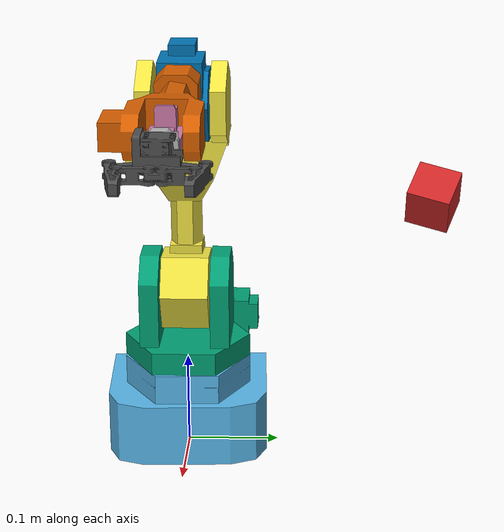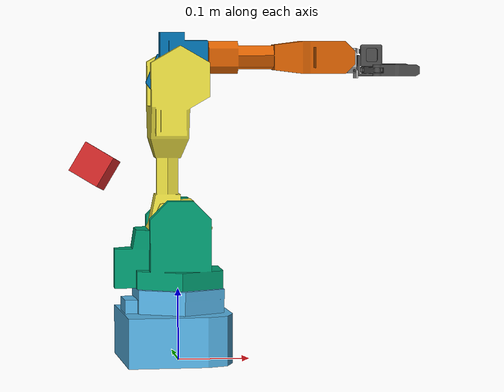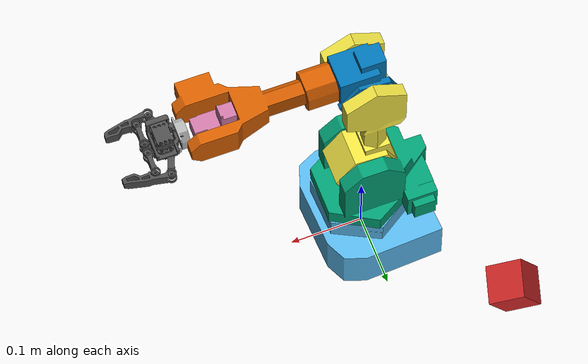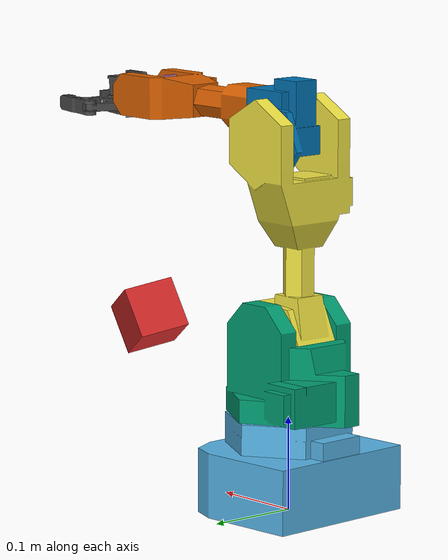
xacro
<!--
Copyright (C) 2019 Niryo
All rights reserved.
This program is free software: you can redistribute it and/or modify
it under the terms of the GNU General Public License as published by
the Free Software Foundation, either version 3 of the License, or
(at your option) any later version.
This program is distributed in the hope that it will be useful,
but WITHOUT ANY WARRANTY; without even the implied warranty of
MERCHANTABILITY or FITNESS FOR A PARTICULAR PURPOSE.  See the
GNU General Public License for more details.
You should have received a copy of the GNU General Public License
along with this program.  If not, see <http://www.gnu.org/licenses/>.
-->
<?xml version="1.0"?>

<robot xmlns:xacro="http://www.ros.org/wiki/xacro" name="niryo_one">
    <!-- Arguments -->
    <xacro:arg name="standalone" default="true" />
    <xacro:arg name="parent_link" default="world" />
    <xacro:arg name="pose_x" default="0.0" />
    <xacro:arg name="pose_y" default="0.0" />
    <xacro:arg name="pose_z" default="0.0" />
    <xacro:arg name="rotation_z" default="0.0" />

    <!-- Properties -->
    <xacro:property name="com_mainsupport_x" value="-0.00216" />
    <xacro:property name="com_mainsupport_z" value="0.02135" />
    <xacro:property name="com_mainsupport_y" value="-0.00204" />
    <xacro:property name="com_left_gear_x" value="0.00326" />
    <xacro:property name="com_left_gear_y" value="0.00988" />
    <xacro:property name="com_left_gear_z" value="0.00032" />
    <xacro:property name="com_right_gear_x" value="0.00374" />
    <xacro:property name="com_right_gear_y" value="0.01129" />
    <xacro:property name="com_rod_y" value="0.0147" />
    <xacro:property name="com_clamp_x" value="0.00896" />
    <xacro:property name="com_clamp_y" value="0.03059" />
    <xacro:property name="com_motor_x" value="-0.00684" />
    <xacro:property name="com_motor_z" value="0.0115" />

    <xacro:property name="distance_origin_shoulder_z" value="0.103" />
    <xacro:property name="distance_shoulder_arm_z" value="0.080" />
    <xacro:property name="distance_arm_elbow_x" value="0.210" />
    <xacro:property name="distance_elbow_forearm_x" value="0.0415" />
    <xacro:property name="distance_elbow_forearm_y" value="0.030" />
    <xacro:property name="distance_forearm_wrist_z" value="0.180" />
    <xacro:property name="distance_wrist_hand_x" value="0.0164" />
    <xacro:property name="distance_wrist_hand_y" value="-0.0055" />
    <xacro:property name="distance_hand_tool" value="0.0073" />
    <xacro:property name="distance_mainsupport_left_gear_x" value="-0.010" />
    <xacro:property name="distance_mainsupport_left_gear_z" value="0.0246" />
    <xacro:property name="distance_mainsupport_left_gear_y" value="-0.01225" />
    <xacro:property name="distance_mainsupport_right_gear_x" value="0.010" />
    <xacro:property name="distance_mainsupport_right_gear_z" value="0.0246" />
    <xacro:property name="distance_mainsupport_right_gear_y" value="-0.01225" />
    <xacro:property name="distance_mainsupport_rod_x" value="-0.0065" />
    <xacro:property name="distance_mainsupport_rod_z" value="0.0466" />
    <xacro:property name="distance_mainsupport_rod_y" value="-0.01225" />
    <xacro:property name="distance_mainsupport_motor_x" value="-0.010" />
    <xacro:property name="distance_mainsupport_motor_z" value="0.0246" />
    <xacro:property name="distance_mainsupport_motor_y" value="-0.00425" />
    <xacro:property name="distance_gear_clamp_x" value="0.00658" />
    <xacro:property name="distance_gear_clamp_y" value="0.03438" />
    <xacro:property name="distance_rod_clamp_y" value="0.02940" />

    <xacro:property name="PI" value="3.14159265359" />

    <xacro:property name="limit_low_shoulder_rotation" value="-3.05433" />
    <xacro:property name="limit_up_shoulder_rotation" value="3.05433" />
    <xacro:property name="limit_low_arm_rotation" value="-1.91986" />
    <xacro:property name="limit_up_arm_rotation" value="0.640187" />
    <xacro:property name="limit_low_elbow_rotation" value="-1.397485" />
    <xacro:property name="limit_up_elbow_rotation" value="${PI/2}" />
    <xacro:property name="limit_low_forearm_rotation" value="-3.05433" />
    <xacro:property name="limit_up_forearm_rotation" value="3.05433" />
    <xacro:property name="limit_low_wrist_rotation" value="-1.74533" />
    <xacro:property name="limit_up_wrist_rotation" value="1.91986" />
    <xacro:property name="limit_low_hand_rotation" value="-2.57436" />
    <xacro:property name="limit_up_hand_rotation" value="2.57436" />
    <xacro:property name="limit_low_hand_rotation" value="-2.57436" />
    <xacro:property name="limit_up_hand_rotation" value="2.57436" />
    <xacro:property name="limit_low_gear_rotation" value="0" />
    <xacro:property name="limit_up_gear_rotation" value="1.2" />
    <xacro:property name="limit_low_rod_rotation" value="${-PI}" />
    <xacro:property name="limit_up_rod_rotation" value="${PI}" />
    <xacro:property name="limit_low_clamp_rotation" value="${-PI}" />
    <xacro:property name="limit_up_clamp_rotation" value="${PI}" />

    <!-- Includes -->
    <xacro:include filename="$(find niryo_one_description)/urdf/niryo_one_gazebo.urdf.xacro" />
    <xacro:include filename="$(find niryo_one_description)/urdf/niryo_one_transmission.urdf.xacro" />

    <!-- Links -->
    <xacro:if value="$(arg standalone)">
        <link name="world" />
    </xacro:if>

    <link name="base_link">
        <visual>
            <origin xyz="0 0 0" rpy="0 0 0" />
            <geometry>
                <mesh filename="package://niryo_one_description/meshes/collada/base_link.dae" />
            </geometry>
        </visual>
        <collision>
            <origin xyz="0 0 0" rpy="0 0 0" />
            <geometry>
                <mesh filename="package://niryo_one_description/meshes/stl/base_link.stl" />
            </geometry>
        </collision>
        <inertial>
            <origin xyz="0 0 ${distance_origin_shoulder_z / 2}" rpy="0 0 0" />
            <mass value="1.2" />
            <inertia ixx="0.0015" ixy="0.0" ixz="0.0" iyy="0.0015" iyz="0.0" izz="0.0015" />
        </inertial>
    </link>

    <link name="shoulder_link">
        <visual>
            <origin xyz="0 0 0" rpy="0 0 0" />
            <geometry>
                <mesh filename="package://niryo_one_description/meshes/collada/shoulder_link.dae" />
            </geometry>
        </visual>
        <collision>
            <origin xyz="0 0 0" rpy="0 0 0" />
            <geometry>
                <mesh filename="package://niryo_one_description/meshes/stl/shoulder_link.stl" />
            </geometry>
        </collision>
        <inertial>
            <origin xyz="0 0 ${distance_shoulder_arm_z / 2}" rpy="0 0 0" />
            <mass value="0.8" />
            <inertia ixx="0.0015" ixy="0.0" ixz="0.0" iyy="0.0015" iyz="0.0" izz="0.0015" />
        </inertial>
    </link>

    <link name="arm_link">
        <visual>
            <origin xyz="0 0 0" rpy="0 0 0" />
            <geometry>
                <mesh filename="package://niryo_one_description/meshes/collada/arm_link.dae" />
            </geometry>
        </visual>
        <collision>
            <origin xyz="0 0 0" rpy="0 0 0" />
            <geometry>
                <mesh filename="package://niryo_one_description/meshes/stl/arm_link.stl" />
            </geometry>
        </collision>
        <inertial>
            <origin xyz="${distance_arm_elbow_x / 2} 0.006 0.003" rpy="0 0 0" />
            <mass value="0.4" />
            <inertia ixx="0.0015" ixy="0.0" ixz="0.0" iyy="0.0015" iyz="0.0" izz="0.0015" />
        </inertial>
    </link>

    <link name="elbow_link">
        <visual>
            <origin xyz="0 0 0" rpy="0 0 0" />
            <geometry>
                <mesh filename="package://niryo_one_description/meshes/collada/elbow_link.dae" />
            </geometry>
        </visual>
        <collision>
            <origin xyz="0 0 0" rpy="0 0 0" />
            <geometry>
                <mesh filename="package://niryo_one_description/meshes/stl/elbow_link.stl" />
            </geometry>
        </collision>
        <inertial>
            <origin xyz="${distance_elbow_forearm_x / 2} ${distance_elbow_forearm_y / 2} 0" rpy="0 0 0" />
            <mass value="0.3" />
            <inertia ixx="0.0015" ixy="0.0" ixz="0.0" iyy="0.0015" iyz="0.0" izz="0.0015" />
        </inertial>
    </link>

    <link name="forearm_link">
        <visual>
            <origin xyz="0 0 0" rpy="0 0 0" />
            <geometry>
                <mesh filename="package://niryo_one_description/meshes/collada/forearm_link.dae" />
            </geometry>
        </visual>
        <collision>
            <origin xyz="0 0 0" rpy="0 0 0" />
            <geometry>
                <mesh filename="package://niryo_one_description/meshes/stl/forearm_link.stl" />
            </geometry>
        </collision>
        <inertial>
            <origin xyz="0 0 ${distance_forearm_wrist_z / 2}" rpy="0 0 0" />
            <mass value="0.3" />
            <inertia ixx="0.0015" ixy="0.0" ixz="0.0" iyy="0.0015" iyz="0.0" izz="0.0015" />
        </inertial>
    </link>

    <link name="wrist_link">
        <visual>
            <origin xyz="0 0 0" rpy="0 0 0" />
            <geometry>
                <mesh filename="package://niryo_one_description/meshes/collada/wrist_link.dae" />
            </geometry>
        </visual>
        <collision>
            <origin xyz="0 0 0" rpy="0 0 0" />
            <geometry>
                <mesh filename="package://niryo_one_description/meshes/stl/wrist_link.stl" />
            </geometry>
        </collision>
        <inertial>
            <origin xyz="${distance_wrist_hand_x / 2} ${distance_wrist_hand_y / 2} 0" rpy="0 0 0" />
            <mass value="0.15" />
            <inertia ixx="0.001" ixy="0.0" ixz="0.0" iyy="0.001" iyz="0.0" izz="0.001" />
        </inertial>
    </link>

    <link name="hand_link">
        <visual>
            <origin xyz="0 0 0" rpy="0 0 0" />
            <geometry>
                <mesh filename="package://niryo_one_description/meshes/collada/hand_link.dae" />
            </geometry>
        </visual>
        <collision>
            <origin xyz="0 0 0" rpy="0 0 0" />
            <geometry>
                <mesh filename="package://niryo_one_description/meshes/stl/hand_link.stl" />
            </geometry>
        </collision>
        <inertial>
            <origin xyz="0 0 ${distance_hand_tool / 2}" rpy="0 0 0" />
            <mass value="0.05" />
            <inertia ixx="0.001" ixy="0.0" ixz="0.0" iyy="0.001" iyz="0.0" izz="0.001" />
        </inertial>
    </link>

    <link name="mainsupport">
        <visual>
            <origin xyz="0 0 0" rpy="0 0 0" />
            <geometry>
                <mesh filename="package://niryo_one_description/meshes/stl/G2_MainSupport.STL" scale="0.001 0.001 0.001" />
            </geometry>
        </visual>
        <collision>
            <origin xyz="0 0 0" rpy="0 0 0" />
            <geometry>
                <mesh filename="package://niryo_one_description/meshes/stl/G2_MainSupport.STL" scale="0.001 0.001 0.001" />
            </geometry>
        </collision>
        <inertial>
            <origin xyz="${com_mainsupport_x} ${com_mainsupport_y} ${com_mainsupport_z}" rpy="0 0 0" />
            <mass value="0.01306" />
            <inertia ixx="4.94888021667e-03" ixy="0.0" ixz="0.0" iyy="4.27188246667e-03" iyz="0.0" izz="5.00673601667e-03" />
        </inertial>
    </link>

    <link name="motor">
        <visual>
            <origin xyz="0 0 0" rpy="0 0 0" />
            <geometry>
                <mesh filename="package://niryo_one_description/meshes/stl/G2_Motor.STL" scale="0.001 0.001 0.001" />
            </geometry>
        </visual>
        <collision>
            <origin xyz="0 0 0" rpy="0 0 0" />
            <geometry>
                <mesh filename="package://niryo_one_description/meshes/stl/G2_Motor.STL" scale="0.001 0.001 0.001" />
            </geometry>
        </collision>
        <inertial>
            <origin xyz="${com_motor_x} 0 ${com_motor_z}" rpy="0 0 0" />
            <mass value="0.01658" />
            <inertia ixx="1.803075e-03" ixy="0.0" ixz="0.0" iyy="2.797875e-03" iyz="0.0" izz="2.58648e-03" />
        </inertial>
    </link>

    <link name="left_gear">
        <visual>
            <origin xyz="0 0 0" rpy="0 0 0" />
            <geometry>
                <mesh filename="package://niryo_one_description/meshes/stl/G2_GearLeft.STL" scale="0.001 0.001 0.001" />
            </geometry>
        </visual>
        <collision>
            <origin xyz="0 0 0" rpy="0 0 0" />
            <geometry>
                <mesh filename="package://niryo_one_description/meshes/stl/G2_GearLeft.STL" scale="0.001 0.001 0.001" />
            </geometry>
        </collision>
        <inertial>
            <origin xyz="${com_left_gear_x} ${com_left_gear_y} ${com_left_gear_z}" rpy="0 0 0" />
            <mass value="0.0043" />
            <inertia ixx="9.39126584733e-04" ixy="0.0" ixz="0.0" iyy="2.218355466e-04" iyz="0.0" izz="1.06535700633e-03" />
        </inertial>
    </link>

    <link name="right_gear">
        <visual>
            <origin xyz="0 0 0" rpy="0 0 0" />
            <geometry>
                <mesh filename="package://niryo_one_description/meshes/stl/G2_GearRight.STL" scale="0.001 0.001 0.001" />
            </geometry>
        </visual>
        <collision>
            <origin xyz="0 0 0" rpy="0 0 0" />
            <geometry>
                <mesh filename="package://niryo_one_description/meshes/stl/G2_GearRight.STL" scale="0.001 0.001 0.001" />
            </geometry>
        </collision>
        <inertial>
            <origin xyz="${com_right_gear_x} ${com_right_gear_y} 0" rpy="0 0 0" />
            <mass value="0.00375" />
            <inertia ixx="7.95137005e-04" ixy="0.0" ixz="0.0" iyy="1.7221403125e-04" iyz="0.0" izz="9.2735103625e-04" />
        </inertial>
    </link>

    <link name="left_rod">
        <visual>
            <origin xyz="0 0 0" rpy="0 0 0" />
            <geometry>
                <mesh filename="package://niryo_one_description/meshes/stl/G2_Rod.STL" scale="0.001 0.001 0.001" />
            </geometry>
        </visual>
        <collision>
            <origin xyz="0 0 0" rpy="0 0 0" />
            <geometry>
                <mesh filename="package://niryo_one_description/meshes/stl/G2_Rod.STL" scale="0.001 0.001 0.001" />
            </geometry>
        </collision>
        <inertial>
            <origin xyz="0 ${com_rod_y} 0" rpy="0 0 0" />
            <mass value="0.00214" />
            <inertia ixx="243.37e-6" ixy="-0.01e-6" ixz="0.0" iyy="76.17e-6" iyz="0.0" izz="198.23e-6" />
        </inertial>
    </link>

    <link name="right_rod">
        <visual>
            <origin xyz="0 0 0" rpy="0 0 0" />
            <geometry>
                <mesh filename="package://niryo_one_description/meshes/stl/G2_Rod.STL" scale="0.001 0.001 0.001" />
            </geometry>
        </visual>
        <collision>
            <origin xyz="0 0 0" rpy="0 0 0" />
            <geometry>
                <mesh filename="package://niryo_one_description/meshes/stl/G2_Rod.STL" scale="0.001 0.001 0.001" />
            </geometry>
        </collision>
        <inertial>
            <origin xyz="0 ${com_rod_y} 0" rpy="0 0 0" />
            <mass value="0.00214" />
            <inertia ixx="243.37e-6" ixy="-0.01e-6" ixz="0.0" iyy="76.17e-6" iyz="0.0" izz="198.23e-6" />
        </inertial>
    </link>

    <link name="left_clamp">
        <visual>
            <origin xyz="0 0 0" rpy="0 0 0" />
            <geometry>
                <mesh filename="package://niryo_one_description/meshes/stl/G2_Clamp.STL" scale="0.001 0.001 0.001" />
            </geometry>
        </visual>
        <collision>
            <origin xyz="0 0 0" rpy="0 0 0" />
            <geometry>
                <mesh filename="package://niryo_one_description/meshes/stl/G2_Clamp.STL" scale="0.001 0.001 0.001" />
            </geometry>
        </collision>
        <inertial>
            <origin xyz="${com_clamp_x} ${com_clamp_y} 0" rpy="0 0 0" />
            <mass value="0.00662" />
            <inertia ixx="1953.77e-6" ixy="447.97e-6" ixz="0.0" iyy="339.54e-6" iyz="0.0" izz="2024.22e-6" />
        </inertial>
    </link>

    <link name="right_clamp">
        <visual>
            <origin xyz="0 0 0" rpy="0 0 0" />
            <geometry>
                <mesh filename="package://niryo_one_description/meshes/stl/G2_Clamp.STL" scale="0.001 0.001 0.001" />
            </geometry>
        </visual>
        <collision>
            <origin xyz="0 0 0" rpy="0 0 0" />
            <geometry>
                <mesh filename="package://niryo_one_description/meshes/stl/G2_Clamp.STL" scale="0.001 0.001 0.001" />
            </geometry>
        </collision>
        <inertial>
            <origin xyz="${com_clamp_x} ${com_clamp_y} 0" rpy="0 0 0" />
            <mass value="0.00662" />
            <inertia ixx="1953.77e-6" ixy="447.97e-6" ixz="0.0" iyy="339.54e-6" iyz="0.0" izz="2024.22e-6" />
        </inertial>
    </link>

    <link name="tool_link"></link>

    <!--Joints -->
    <joint name="joint_base" type="fixed">
        <parent link="$(arg parent_link)" />
        <child link="base_link" />
        <origin xyz="$(arg pose_x) $(arg pose_y) $(arg pose_z)" rpy="0 0 $(arg rotation_z)" />
    </joint>

    <joint name="joint_1" type="revolute">
        <parent link="base_link" />
        <child link="shoulder_link" />
        <origin xyz="0 0 ${distance_origin_shoulder_z}" rpy="0 0 0" />
        <axis xyz="0 0 1" />
        <limit effort="100.0" velocity="3.0" lower="${limit_low_shoulder_rotation}" upper="${limit_up_shoulder_rotation}" />
        <dynamics damping="0.1" friction="0.0" />
    </joint>

    <joint name="joint_2" type="revolute">
        <parent link="shoulder_link" />
        <child link="arm_link" />
        <origin xyz="0 0 ${distance_shoulder_arm_z}" rpy="${PI/2} ${-PI/2} 0" />
        <limit effort="100.0" velocity="3.0" lower="${limit_low_arm_rotation}" upper="${limit_up_arm_rotation}" />
        <axis xyz="0 0 1" />
        <dynamics damping="0.1" friction="0.0" />
    </joint>

    <joint name="joint_3" type="revolute">
        <parent link="arm_link" />
        <child link="elbow_link" />
        <origin xyz="${distance_arm_elbow_x} 0 0" rpy="0 0 ${-PI/2}" />
        <limit effort="100.0" velocity="3.0" lower="${limit_low_elbow_rotation}" upper="${limit_up_elbow_rotation}" />
        <axis xyz="0 0 1" />
        <dynamics damping="0.1" friction="0.0" />
    </joint>

    <joint name="joint_4" type="revolute">
        <parent link="elbow_link" />
        <child link="forearm_link" />
        <origin xyz="${distance_elbow_forearm_x} ${distance_elbow_forearm_y} 0" rpy="0 ${PI/2} 0" />
        <limit effort="100.0" velocity="3.0" lower="${limit_low_forearm_rotation}" upper="${limit_up_forearm_rotation}" />
        <axis xyz="0 0 1" />
        <dynamics damping="0.1" friction="0.0" />
    </joint>

    <joint name="joint_5" type="revolute">
        <parent link="forearm_link" />
        <child link="wrist_link" />
        <origin xyz="0 0 ${distance_forearm_wrist_z}" rpy="0 ${-PI/2} 0" />
        <limit effort="100.0" velocity="3.0" lower="${limit_low_wrist_rotation}" upper="${limit_up_wrist_rotation}" />
        <axis xyz="0 0 1" />
        <dynamics damping="0.1" friction="0.0" />
    </joint>

    <joint name="joint_6" type="revolute">
        <parent link="wrist_link" />
        <child link="hand_link" />
        <origin xyz="${distance_wrist_hand_x} ${distance_wrist_hand_y} 0" rpy="0 ${PI/2} 0" />
        <limit effort="100.0" velocity="3.0" lower="${limit_low_hand_rotation}" upper="${limit_up_hand_rotation}" />
        <axis xyz="0 0 1" />
        <dynamics damping="0.1" friction="0.0" />
    </joint>

    <joint name="tool_joint" type="fixed">
        <parent link="hand_link" />
        <child link="tool_link" />
        <origin xyz="0 0 ${distance_hand_tool}" rpy="0 0 0" />
    </joint>

    <joint name="mainsupport_joint" type="fixed">
        <parent link="tool_link" />
        <child link="mainsupport" />
        <origin xyz="0 0 0" rpy="0 0 0" />
    </joint>

    <joint name="motor_joint" type="fixed">
        <parent link="mainsupport" />
        <child link="motor" />
        <origin xyz="${distance_mainsupport_motor_x} ${distance_mainsupport_motor_y} ${distance_mainsupport_motor_z}" rpy="${-PI/2} ${PI} 0" />
    </joint>

    <joint name="gripper_joint" type="revolute">
        <parent link="mainsupport" />
        <child link="left_gear" />
        <origin xyz="${distance_mainsupport_left_gear_x} ${distance_mainsupport_left_gear_y} ${distance_mainsupport_left_gear_z}" rpy="${-PI/2} ${PI/180*(180-72.65)} 0" />
        <axis xyz="0 0 1" />
        <limit effort="100.0" velocity="3.0" lower="${limit_low_gear_rotation}" upper="${limit_up_gear_rotation}" />
        <dynamics damping="0.1" friction="0.0" />
    </joint>

    <joint name="right_gear_joint" type="revolute">
        <parent link="mainsupport" />
        <child link="right_gear" />
        <origin xyz="${distance_mainsupport_right_gear_x} ${distance_mainsupport_right_gear_y} ${distance_mainsupport_right_gear_z}" rpy="${PI/2} ${PI/180*(72.65)} 0" />
        <axis xyz="0 0 1" />
        <limit effort="100.0" velocity="3.0" lower="${limit_low_gear_rotation}" upper="${limit_up_gear_rotation}" />
        <dynamics damping="0.1" friction="0.0" />
        <mimic joint="gripper_joint" multiplier="1" offset="0" />
    </joint>

    <joint name="left_rod_joint" type="revolute">
        <parent link="mainsupport" />
        <child link="left_rod" />
        <origin xyz="${distance_mainsupport_rod_x} ${distance_mainsupport_rod_y} ${distance_mainsupport_rod_z}" rpy="${-PI/2} ${PI/2} 0" />
        <axis xyz="0 0 1" />
        <limit effort="100.0" velocity="3.0" lower="${limit_low_rod_rotation}" upper="${limit_up_rod_rotation}" />
        <dynamics damping="0.1" friction="0.0" />
    </joint>

    <joint name="right_rod_joint" type="revolute">
        <parent link="mainsupport" />
        <child link="right_rod" />
        <origin xyz="${-distance_mainsupport_rod_x} ${distance_mainsupport_rod_y} ${distance_mainsupport_rod_z}" rpy="${PI/2} ${PI/2} 0" />
        <axis xyz="0 0 1" />
        <limit effort="100.0" velocity="3.0" lower="${limit_low_rod_rotation}" upper="${limit_up_rod_rotation}" />
        <dynamics damping="0.1" friction="0.0" />
    </joint>

    <joint name="left_clamp_joint" type="revolute">
        <parent link="left_gear" />
        <child link="left_clamp" />
        <origin xyz="${distance_gear_clamp_x} ${distance_gear_clamp_y} 0" rpy="0 0 ${PI/180*(98.86)}" />
        <axis xyz="0 0 1" />
        <limit effort="100.0" velocity="3.0" lower="${limit_low_clamp_rotation}" upper="${limit_up_clamp_rotation}" />
        <dynamics damping="0.1" friction="0.0" />
    </joint>

    <joint name="right_clamp_joint" type="revolute">
        <parent link="right_gear" />
        <child link="right_clamp" />
        <origin xyz="${distance_gear_clamp_x} ${distance_gear_clamp_y} 0" rpy="0 0 ${PI/180*(98.86)}" />
        <axis xyz="0 0 1" />
        <limit effort="100.0" velocity="3.0" lower="${limit_low_clamp_rotation}" upper="${limit_up_clamp_rotation}" />
        <dynamics damping="0.1" friction="0.0" />
    </joint>

    <!-- Adding RealSense Sensor  -->
    <joint name="camera_joint" type="fixed">
        <axis xyz="0 1 0" />
        <origin xyz="-0.101 0.274 0.257" rpy="-2.083 -0.176 -1.850" />
        <parent link="base_link" />
        <child link="camera_link" />
    </joint>

    <!-- Camera -->
    <link name="camera_link">
        <collision>
            <origin xyz="0 0 0" rpy="0 0 0" />
            <geometry>
                <box size="0.05 0.05 0.05" />
            </geometry>
        </collision>

        <visual>
            <origin xyz="0 0 0" rpy="0 0 0" />
            <geometry>
                <box size="0.05 0.05 0.05" />
            </geometry>
            <material name="red" />
        </visual>

        <inertial>
            <mass value="1e-5" />
            <origin xyz="0 0 0.0" rpy="0 0 0" />
            <inertia ixx="1e-6" ixy="0" ixz="0" iyy="1e-6" iyz="0" izz="1e-6" />
        </inertial>
    </link>

    <!-- Camera Adujustment (it's originally set to point in x, gotta rotate around y by 90) -->
    <joint name="camera_joint_fix" type="fixed">
        <axis xyz="0 1 0" />
        <origin xyz="0 0 0" rpy="0 -1.5 1.5" />
        <parent link="camera_link" />
        <child link="camera_link_adjust" />
    </joint>

    <link name="camera_link_adjust"></link>

    <gazebo reference="camera_link_adjust">
        <sensor name="camera_link_adjustcamera" type="depth">
            <update_rate>20</update_rate>
            <camera>
                <horizontal_fov>1.047198</horizontal_fov>
                <image>
                    <width>640</width>
                    <height>480</height>
                    <format>R8G8B8</format>
                </image>
                <clip>
                    <near>0.0001</near>
                    <far>300</far>
                </clip>
            </camera>
            <plugin name="depth_controller" filename="libgazebo_ros_openni_kinect.so">
                <baseline>0.2</baseline>
                <alwaysOn>true</alwaysOn>
                <updateRate>1.0</updateRate>
                <cameraName>camera_ir</cameraName>
                <imageTopicName>/camera/color/image_raw</imageTopicName>
                <cameraInfoTopicName>/camera/color/camera_info</cameraInfoTopicName>
                <depthImageTopicName>/camera/depth/image_raw</depthImageTopicName>
                <depthImageInfoTopicName>/camera/depth/camera_info</depthImageInfoTopicName>
                <pointCloudTopicName>/camera/depth/points</pointCloudTopicName>
                <frameName>kinect</frameName>
                <pointCloudCutoff>0.5</pointCloudCutoff>
                <pointCloudCutoffMax>3.0</pointCloudCutoffMax>
                <distortionK1>0.00000001</distortionK1>
                <distortionK2>0.00000001</distortionK2>
                <distortionK3>0.00000001</distortionK3>
                <distortionT1>0.00000001</distortionT1>
                <distortionT2>0.00000001</distortionT2>
                <CxPrime>0</CxPrime>
                <Cx>0</Cx>
                <Cy>0</Cy>
                <focalLength>0</focalLength>
                <hackBaseline>0</hackBaseline>
            </plugin>
        </sensor>
    </gazebo>

</robot>
